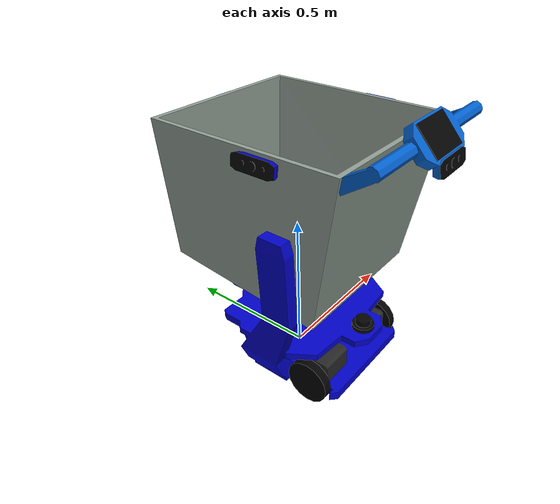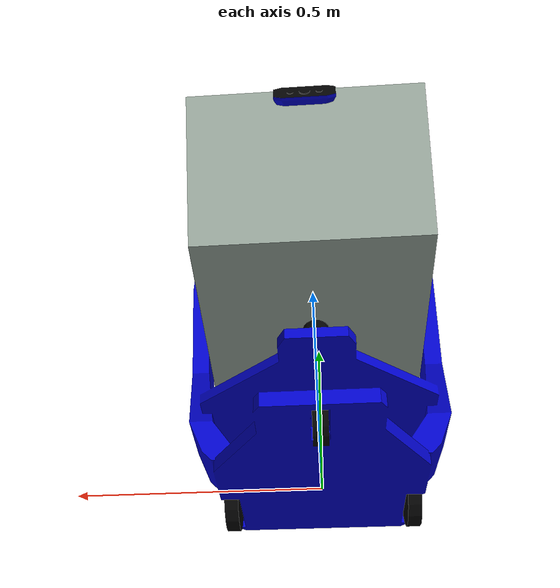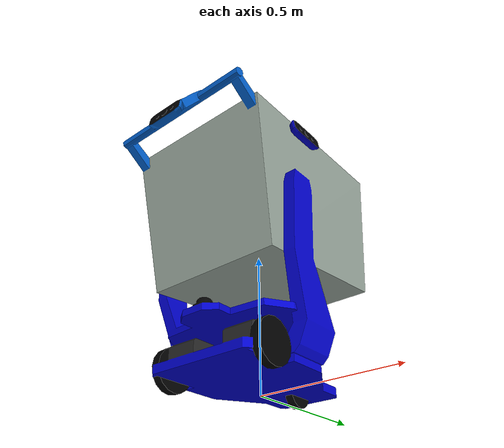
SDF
<?xml version="1.0" ?>
<sdf version="1.6">
  <model name="shopping_cart">
    <link name="link">
      <collision name="collision">
        <geometry>
          <mesh>
            <scale>1 1 1</scale>
            <uri>model://shopping_cart/meshes/shopping_cart.dae</uri>
          </mesh>
          <surface>
            <friction>
              <ode>
                <mu>1.2</mu>
                <mu2>1.2</mu2>
              </ode>
            </friction>
          </surface>
        </geometry>
      </collision>
      <visual name="visual">
        <geometry>
          <mesh>
            <uri>model://shopping_cart/meshes/shopping_cart.dae</uri>
          </mesh>
        </geometry>
      </visual>
    </link>
  </model>
</sdf>
